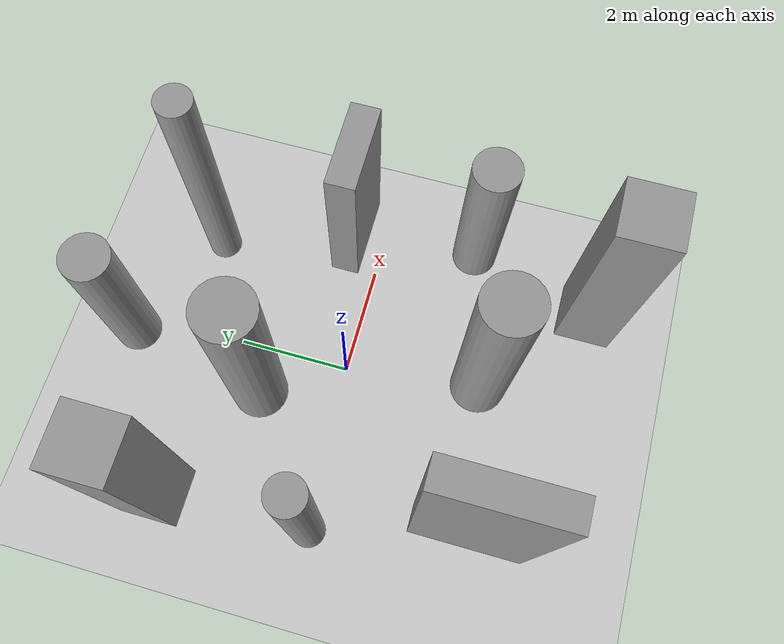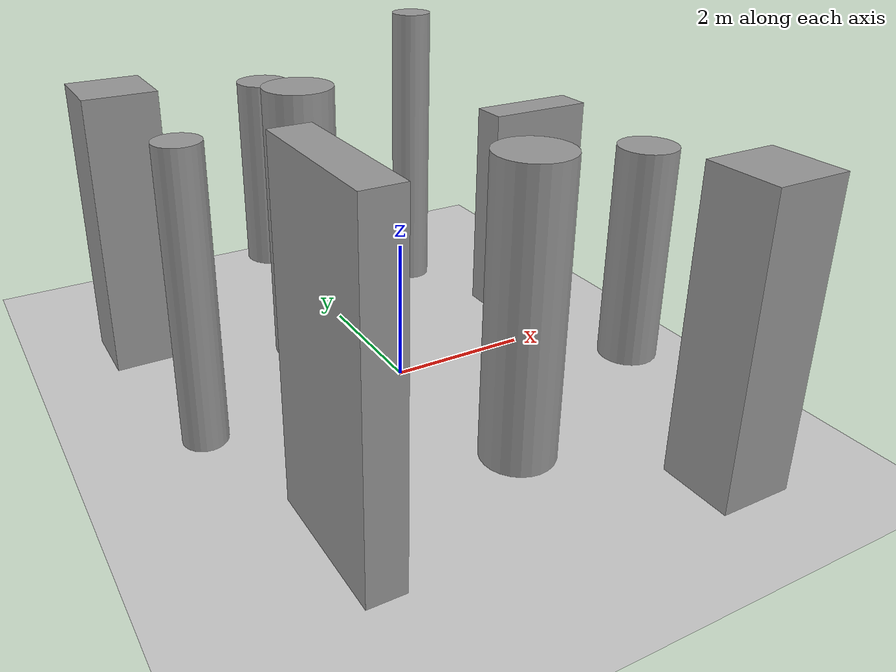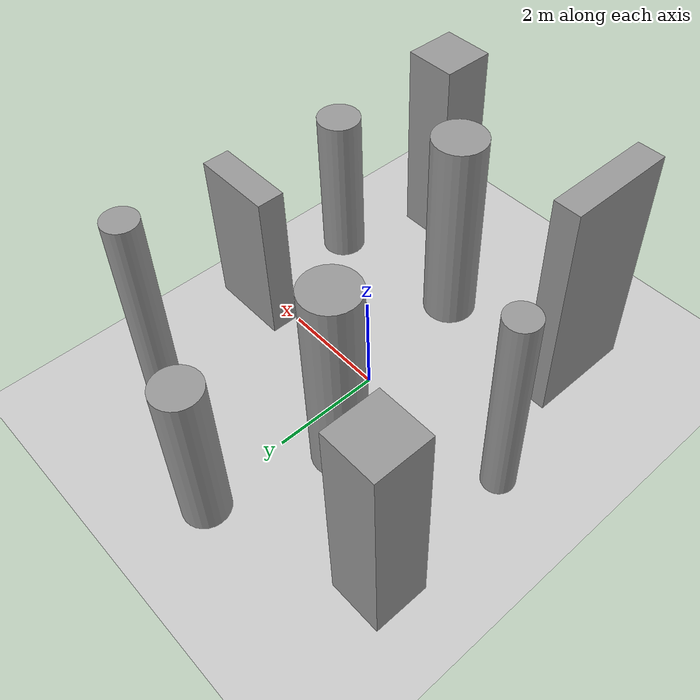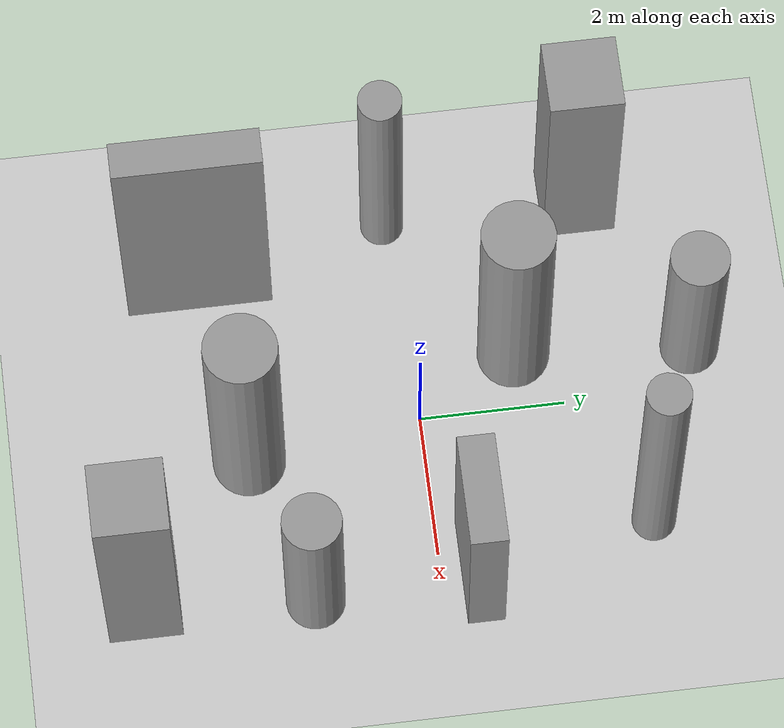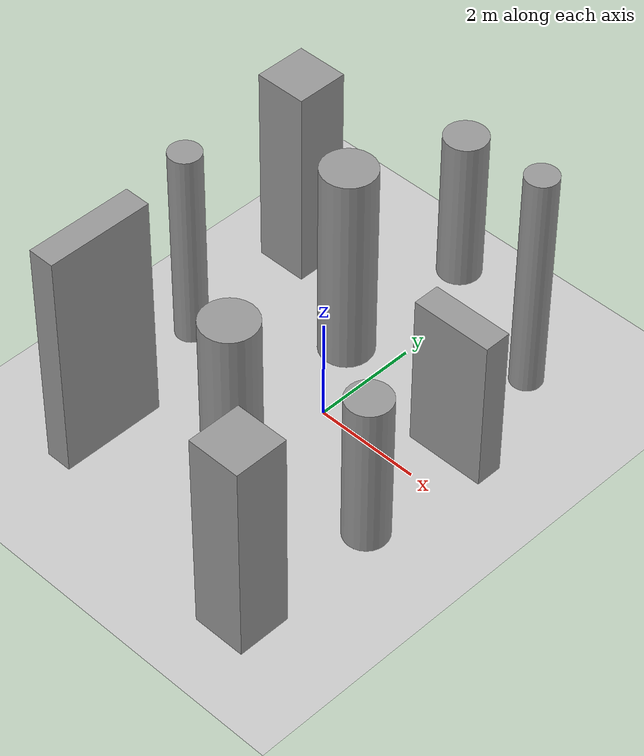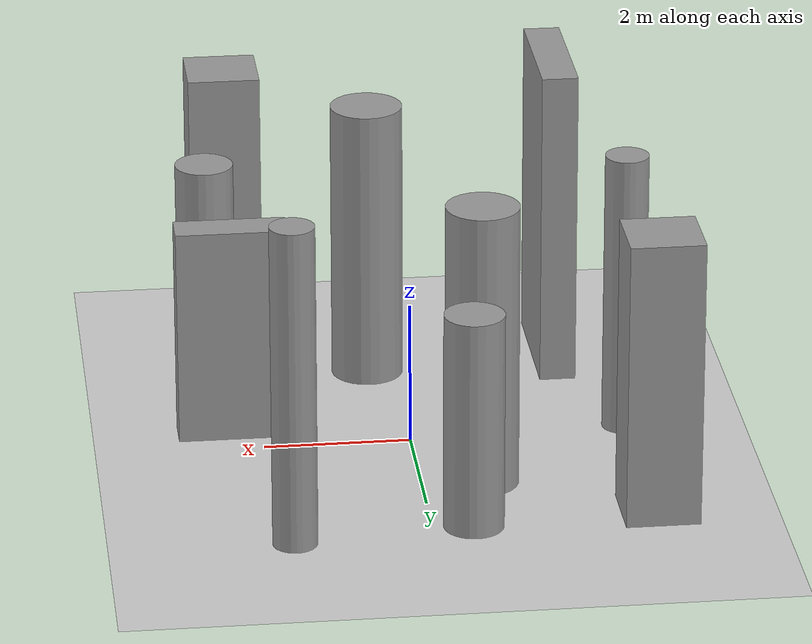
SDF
<sdf version="1.7">
 <world name="default">
  <light name="sun" type="directional">
   <pose>0 0 10 0 -0 0</pose>
   <diffuse>0.8 0.8 0.8 1</diffuse>
   <specular>0.2 0.2 0.2 1</specular>
   <attenuation>
    <range>1000</range>
    <constant>0.9</constant>
    <linear>0.01</linear>
    <quadratic>0.001</quadratic>
   </attenuation>
   <direction>-0.5 0.1 -0.9</direction>
   <spot><inner_angle>0</inner_angle><outer_angle>0</outer_angle><falloff>0</falloff></spot>
  </light>
  <model name="ground_plane">
   <static>1</static>
   <link name="link">
    <collision name="collision">
     <geometry><plane><normal>0 0 1</normal><size>100 100</size></plane></geometry>
     <surface><friction><ode><mu>100</mu><mu2>50</mu2></ode></friction></surface>
    </collision>
    <visual name="visual">
     <cast_shadows>0</cast_shadows>
     <geometry><plane><normal>0 0 1</normal><size>100 100</size></plane></geometry>
     <material>
      <script><uri>file://media/materials/scripts/gazebo.material</uri><name>Gazebo/Grey</name></script>
     </material>
    </visual>
   </link>
  </model>
  <gravity>0 0 -9.8</gravity>
  <magnetic_field>6e-06 2.3e-05 -4.2e-05</magnetic_field>
  <atmosphere type="adiabatic"/>
  <physics type="ode">
   <max_step_size>0.001</max_step_size>
   <real_time_factor>1</real_time_factor>
   <real_time_update_rate>1000</real_time_update_rate>
  </physics>
  <scene><ambient>0.4 0.4 0.4 1</ambient><background>0.7 0.7 0.7 1</background><shadows>1</shadows></scene>
  <audio><device>default</device></audio>
  <spherical_coordinates>
   <surface_model>EARTH_WGS84</surface_model>
   <latitude_deg>0</latitude_deg>
   <longitude_deg>0</longitude_deg>
   <elevation>0</elevation>
   <heading_deg>0</heading_deg>
  </spherical_coordinates>
  <model name="obstalces2">
   <link name="link_11">
    <inertial>
     <mass>1</mass>
     <inertia><ixx>166667</ixx><ixy>0</ixy><ixz>0</ixz><iyy>166667</iyy><iyz>0</iyz><izz>166667</izz></inertia>
    </inertial>
    <pose>-3.03778 2.53975 0 0 -0 0</pose>
    <visual name="visual">
     <geometry><box><size>1 1 4</size></box></geometry>
     <material>
      <lighting>1</lighting>
      <script><uri>file://media/materials/scripts/gazebo.material</uri><name>Gazebo/Grey</name></script>
      <shader type="pixel"><normal_map>__default__</normal_map></shader>
      <ambient>0.3 0.3 0.3 1</ambient>
      <diffuse>0.7 0.7 0.7 1</diffuse>
      <specular>0.01 0.01 0.01 1</specular>
      <emissive>0 0 0 1</emissive>
     </material>
    </visual>
    <collision name="collision">
     <geometry><box><size>1 1 4</size></box></geometry>
     <surface>
      <friction>
       <ode><mu>1</mu><mu2>1</mu2><fdir1>0 0 0</fdir1><slip1>0</slip1><slip2>0</slip2></ode>
       <torsional>
        <coefficient>1</coefficient>
        <patch_radius>0</patch_radius>
        <surface_radius>0</surface_radius>
        <use_patch_radius>1</use_patch_radius>
        <ode><slip>0</slip></ode>
       </torsional>
      </friction>
      <bounce><restitution_coefficient>0</restitution_coefficient><threshold>1e+06</threshold></bounce>
      <contact>
       <collide_without_contact>0</collide_without_contact>
       <collide_without_contact_bitmask>1</collide_without_contact_bitmask>
       <collide_bitmask>1</collide_bitmask>
       <ode>
        <soft_cfm>0</soft_cfm>
        <soft_erp>0.2</soft_erp>
        <kp>1e+13</kp>
        <kd>1</kd>
        <max_vel>0.01</max_vel>
        <min_depth>0</min_depth>
       </ode>
       <bullet>
        <split_impulse>1</split_impulse>
        <split_impulse_penetration_threshold>-0.01</split_impulse_penetration_threshold>
        <soft_cfm>0</soft_cfm>
        <soft_erp>0.2</soft_erp>
        <kp>1e+13</kp>
        <kd>1</kd>
       </bullet>
      </contact>
     </surface>
    </collision>
   </link>
   <link name="link_12">
    <inertial>
     <mass>1</mass>
     <inertia><ixx>145833</ixx><ixy>0</ixy><ixz>0</ixz><iyy>145833</iyy><iyz>0</iyz><izz>125</izz></inertia>
    </inertial>
    <pose>2.64639 -1.73365 0 0 -0 0</pose>
    <visual name="visual">
     <geometry><cylinder><radius>0.4</radius><length>3</length></cylinder></geometry>
     <material>
      <lighting>1</lighting>
      <script><uri>file://media/materials/scripts/gazebo.material</uri><name>Gazebo/Grey</name></script>
      <shader type="pixel"><normal_map>__default__</normal_map></shader>
      <ambient>0.3 0.3 0.3 1</ambient>
      <diffuse>0.7 0.7 0.7 1</diffuse>
      <specular>0.01 0.01 0.01 1</specular>
      <emissive>0 0 0 1</emissive>
     </material>
    </visual>
    <collision name="collision">
     <geometry><cylinder><radius>0.4</radius><length>3</length></cylinder></geometry>
     <surface>
      <friction>
       <ode><mu>1</mu><mu2>1</mu2><fdir1>0 0 0</fdir1><slip1>0</slip1><slip2>0</slip2></ode>
       <torsional>
        <coefficient>1</coefficient>
        <patch_radius>0</patch_radius>
        <surface_radius>0</surface_radius>
        <use_patch_radius>1</use_patch_radius>
        <ode><slip>0</slip></ode>
       </torsional>
      </friction>
      <bounce><restitution_coefficient>0</restitution_coefficient><threshold>1e+06</threshold></bounce>
      <contact>
       <collide_without_contact>0</collide_without_contact>
       <collide_without_contact_bitmask>1</collide_without_contact_bitmask>
       <collide_bitmask>1</collide_bitmask>
       <ode>
        <soft_cfm>0</soft_cfm>
        <soft_erp>0.2</soft_erp>
        <kp>1e+13</kp>
        <kd>1</kd>
        <max_vel>0.01</max_vel>
        <min_depth>0</min_depth>
       </ode>
       <bullet>
        <split_impulse>1</split_impulse>
        <split_impulse_penetration_threshold>-0.01</split_impulse_penetration_threshold>
        <soft_cfm>0</soft_cfm>
        <soft_erp>0.2</soft_erp>
        <kp>1e+13</kp>
        <kd>1</kd>
       </bullet>
      </contact>
     </surface>
    </collision>
   </link>
   <link name="link_14">
    <inertial>
     <mass>1</mass>
     <inertia><ixx>145833</ixx><ixy>0</ixy><ixz>0</ixz><iyy>145833</iyy><iyz>0</iyz><izz>125</izz></inertia>
    </inertial>
    <pose>0.344724 -2.40039 0 0 -0 0</pose>
    <visual name="visual">
     <geometry><cylinder><radius>0.5</radius><length>4</length></cylinder></geometry>
     <material>
      <lighting>1</lighting>
      <script><uri>file://media/materials/scripts/gazebo.material</uri><name>Gazebo/Grey</name></script>
      <shader type="pixel"><normal_map>__default__</normal_map></shader>
      <ambient>0.3 0.3 0.3 1</ambient>
      <diffuse>0.7 0.7 0.7 1</diffuse>
      <specular>0.01 0.01 0.01 1</specular>
      <emissive>0 0 0 1</emissive>
     </material>
    </visual>
    <collision name="collision">
     <geometry><cylinder><radius>0.5</radius><length>4</length></cylinder></geometry>
     <surface>
      <friction>
       <ode><mu>1</mu><mu2>1</mu2><fdir1>0 0 0</fdir1><slip1>0</slip1><slip2>0</slip2></ode>
       <torsional>
        <coefficient>1</coefficient>
        <patch_radius>0</patch_radius>
        <surface_radius>0</surface_radius>
        <use_patch_radius>1</use_patch_radius>
        <ode><slip>0</slip></ode>
       </torsional>
      </friction>
      <bounce><restitution_coefficient>0</restitution_coefficient><threshold>1e+06</threshold></bounce>
      <contact>
       <collide_without_contact>0</collide_without_contact>
       <collide_without_contact_bitmask>1</collide_without_contact_bitmask>
       <collide_bitmask>1</collide_bitmask>
       <ode>
        <soft_cfm>0</soft_cfm>
        <soft_erp>0.2</soft_erp>
        <kp>1e+13</kp>
        <kd>1</kd>
        <max_vel>0.01</max_vel>
        <min_depth>0</min_depth>
       </ode>
       <bullet>
        <split_impulse>1</split_impulse>
        <split_impulse_penetration_threshold>-0.01</split_impulse_penetration_threshold>
        <soft_cfm>0</soft_cfm>
        <soft_erp>0.2</soft_erp>
        <kp>1e+13</kp>
        <kd>1</kd>
       </bullet>
      </contact>
     </surface>
    </collision>
   </link>
   <link name="link_16">
    <inertial>
     <mass>1</mass>
     <inertia><ixx>145833</ixx><ixy>0</ixy><ixz>0</ixz><iyy>145833</iyy><iyz>0</iyz><izz>125</izz></inertia>
    </inertial>
    <pose>-0.815528 1.39211 0 0 -0 0</pose>
    <visual name="visual">
     <geometry><cylinder><radius>0.5</radius><length>4</length></cylinder></geometry>
     <material>
      <lighting>1</lighting>
      <script><uri>file://media/materials/scripts/gazebo.material</uri><name>Gazebo/Grey</name></script>
      <shader type="pixel"><normal_map>__default__</normal_map></shader>
      <ambient>0.3 0.3 0.3 1</ambient>
      <diffuse>0.7 0.7 0.7 1</diffuse>
      <specular>0.01 0.01 0.01 1</specular>
      <emissive>0 0 0 1</emissive>
     </material>
    </visual>
    <collision name="collision">
     <geometry><cylinder><radius>0.5</radius><length>4</length></cylinder></geometry>
     <surface>
      <friction>
       <ode><mu>1</mu><mu2>1</mu2><fdir1>0 0 0</fdir1><slip1>0</slip1><slip2>0</slip2></ode>
       <torsional>
        <coefficient>1</coefficient>
        <patch_radius>0</patch_radius>
        <surface_radius>0</surface_radius>
        <use_patch_radius>1</use_patch_radius>
        <ode><slip>0</slip></ode>
       </torsional>
      </friction>
      <bounce><restitution_coefficient>0</restitution_coefficient><threshold>1e+06</threshold></bounce>
      <contact>
       <collide_without_contact>0</collide_without_contact>
       <collide_without_contact_bitmask>1</collide_without_contact_bitmask>
       <collide_bitmask>1</collide_bitmask>
       <ode>
        <soft_cfm>0</soft_cfm>
        <soft_erp>0.2</soft_erp>
        <kp>1e+13</kp>
        <kd>1</kd>
        <max_vel>0.01</max_vel>
        <min_depth>0</min_depth>
       </ode>
       <bullet>
        <split_impulse>1</split_impulse>
        <split_impulse_penetration_threshold>-0.01</split_impulse_penetration_threshold>
        <soft_cfm>0</soft_cfm>
        <soft_erp>0.2</soft_erp>
        <kp>1e+13</kp>
        <kd>1</kd>
       </bullet>
      </contact>
     </surface>
    </collision>
   </link>
   <link name="link_17">
    <inertial>
     <mass>1</mass>
     <inertia><ixx>145833</ixx><ixy>0</ixy><ixz>0</ixz><iyy>145833</iyy><iyz>0</iyz><izz>125</izz></inertia>
    </inertial>
    <pose>-0.417772 3.76581 0 0 -0 0</pose>
    <visual name="visual">
     <geometry><cylinder><radius>0.4</radius><length>3</length></cylinder></geometry>
     <material>
      <lighting>1</lighting>
      <script><uri>file://media/materials/scripts/gazebo.material</uri><name>Gazebo/Grey</name></script>
      <shader type="pixel"><normal_map>__default__</normal_map></shader>
      <ambient>0.3 0.3 0.3 1</ambient>
      <diffuse>0.7 0.7 0.7 1</diffuse>
      <specular>0.01 0.01 0.01 1</specular>
      <emissive>0 0 0 1</emissive>
     </material>
    </visual>
    <collision name="collision">
     <geometry><cylinder><radius>0.4</radius><length>3</length></cylinder></geometry>
     <surface>
      <friction>
       <ode><mu>1</mu><mu2>1</mu2><fdir1>0 0 0</fdir1><slip1>0</slip1><slip2>0</slip2></ode>
       <torsional>
        <coefficient>1</coefficient>
        <patch_radius>0</patch_radius>
        <surface_radius>0</surface_radius>
        <use_patch_radius>1</use_patch_radius>
        <ode><slip>0</slip></ode>
       </torsional>
      </friction>
      <bounce><restitution_coefficient>0</restitution_coefficient><threshold>1e+06</threshold></bounce>
      <contact>
       <collide_without_contact>0</collide_without_contact>
       <collide_without_contact_bitmask>1</collide_without_contact_bitmask>
       <collide_bitmask>1</collide_bitmask>
       <ode>
        <soft_cfm>0</soft_cfm>
        <soft_erp>0.2</soft_erp>
        <kp>1e+13</kp>
        <kd>1</kd>
        <max_vel>0.01</max_vel>
        <min_depth>0</min_depth>
       </ode>
       <bullet>
        <split_impulse>1</split_impulse>
        <split_impulse_penetration_threshold>-0.01</split_impulse_penetration_threshold>
        <soft_cfm>0</soft_cfm>
        <soft_erp>0.2</soft_erp>
        <kp>1e+13</kp>
        <kd>1</kd>
       </bullet>
      </contact>
     </surface>
    </collision>
   </link>
   <link name="link_18">
    <inertial>
     <mass>1</mass>
     <inertia><ixx>166667</ixx><ixy>0</ixy><ixz>0</ixz><iyy>166667</iyy><iyz>0</iyz><izz>166667</izz></inertia>
    </inertial>
    <pose>2.22537 -4.04815 0 0 -0 0</pose>
    <visual name="visual">
     <geometry><box><size>1 1 4</size></box></geometry>
     <material>
      <lighting>1</lighting>
      <script><uri>file://media/materials/scripts/gazebo.material</uri><name>Gazebo/Grey</name></script>
      <shader type="pixel"><normal_map>__default__</normal_map></shader>
      <ambient>0.3 0.3 0.3 1</ambient>
      <diffuse>0.7 0.7 0.7 1</diffuse>
      <specular>0.01 0.01 0.01 1</specular>
      <emissive>0 0 0 1</emissive>
     </material>
    </visual>
    <collision name="collision">
     <geometry><box><size>1 1 4</size></box></geometry>
     <surface>
      <friction>
       <ode><mu>1</mu><mu2>1</mu2><fdir1>0 0 0</fdir1><slip1>0</slip1><slip2>0</slip2></ode>
       <torsional>
        <coefficient>1</coefficient>
        <patch_radius>0</patch_radius>
        <surface_radius>0</surface_radius>
        <use_patch_radius>1</use_patch_radius>
        <ode><slip>0</slip></ode>
       </torsional>
      </friction>
      <bounce><restitution_coefficient>0</restitution_coefficient><threshold>1e+06</threshold></bounce>
      <contact>
       <collide_without_contact>0</collide_without_contact>
       <collide_without_contact_bitmask>1</collide_without_contact_bitmask>
       <collide_bitmask>1</collide_bitmask>
       <ode>
        <soft_cfm>0</soft_cfm>
        <soft_erp>0.2</soft_erp>
        <kp>1e+13</kp>
        <kd>1</kd>
        <max_vel>0.01</max_vel>
        <min_depth>0</min_depth>
       </ode>
       <bullet>
        <split_impulse>1</split_impulse>
        <split_impulse_penetration_threshold>-0.01</split_impulse_penetration_threshold>
        <soft_cfm>0</soft_cfm>
        <soft_erp>0.2</soft_erp>
        <kp>1e+13</kp>
        <kd>1</kd>
       </bullet>
      </contact>
     </surface>
    </collision>
   </link>
   <link name="link_3">
    <inertial>
     <mass>1</mass>
     <inertia><ixx>145833</ixx><ixy>0</ixy><ixz>0</ixz><iyy>145833</iyy><iyz>0</iyz><izz>125</izz></inertia>
    </inertial>
    <pose>-2.97254 -0.183383 0 0 -0 0</pose>
    <visual name="visual">
     <geometry><cylinder><radius>0.3</radius><length>4</length></cylinder></geometry>
     <material>
      <lighting>1</lighting>
      <script><uri>file://media/materials/scripts/gazebo.material</uri><name>Gazebo/Grey</name></script>
      <shader type="pixel"><normal_map>__default__</normal_map></shader>
      <ambient>0.3 0.3 0.3 1</ambient>
      <diffuse>0.7 0.7 0.7 1</diffuse>
      <specular>0.01 0.01 0.01 1</specular>
      <emissive>0 0 0 1</emissive>
     </material>
    </visual>
    <collision name="collision">
     <geometry><cylinder><radius>0.3</radius><length>4</length></cylinder></geometry>
     <surface>
      <friction>
       <ode><mu>1</mu><mu2>1</mu2><fdir1>0 0 0</fdir1><slip1>0</slip1><slip2>0</slip2></ode>
       <torsional>
        <coefficient>1</coefficient>
        <patch_radius>0</patch_radius>
        <surface_radius>0</surface_radius>
        <use_patch_radius>1</use_patch_radius>
        <ode><slip>0</slip></ode>
       </torsional>
      </friction>
      <bounce><restitution_coefficient>0</restitution_coefficient><threshold>1e+06</threshold></bounce>
      <contact>
       <collide_without_contact>0</collide_without_contact>
       <collide_without_contact_bitmask>1</collide_without_contact_bitmask>
       <collide_bitmask>1</collide_bitmask>
       <ode>
        <soft_cfm>0</soft_cfm>
        <soft_erp>0.2</soft_erp>
        <kp>1e+13</kp>
        <kd>1</kd>
        <max_vel>0.01</max_vel>
        <min_depth>0</min_depth>
       </ode>
       <bullet>
        <split_impulse>1</split_impulse>
        <split_impulse_penetration_threshold>-0.01</split_impulse_penetration_threshold>
        <soft_cfm>0</soft_cfm>
        <soft_erp>0.2</soft_erp>
        <kp>1e+13</kp>
        <kd>1</kd>
       </bullet>
      </contact>
     </surface>
    </collision>
   </link>
   <link name="link_4">
    <inertial>
     <mass>1</mass>
     <inertia><ixx>166667</ixx><ixy>0</ixy><ixz>0</ixz><iyy>166667</iyy><iyz>0</iyz><izz>166667</izz></inertia>
    </inertial>
    <pose>2.46004 0.510193 0 0 -0 0</pose>
    <visual name="visual">
     <geometry><box><size>1.5 0.5 3</size></box></geometry>
     <material>
      <lighting>1</lighting>
      <script><uri>file://media/materials/scripts/gazebo.material</uri><name>Gazebo/Grey</name></script>
      <shader type="pixel"><normal_map>__default__</normal_map></shader>
      <ambient>0.3 0.3 0.3 1</ambient>
      <diffuse>0.7 0.7 0.7 1</diffuse>
      <specular>0.01 0.01 0.01 1</specular>
      <emissive>0 0 0 1</emissive>
     </material>
    </visual>
    <collision name="collision">
     <geometry><box><size>1.5 0.5 3</size></box></geometry>
     <surface>
      <friction>
       <ode><mu>1</mu><mu2>1</mu2><fdir1>0 0 0</fdir1><slip1>0</slip1><slip2>0</slip2></ode>
       <torsional>
        <coefficient>1</coefficient>
        <patch_radius>0</patch_radius>
        <surface_radius>0</surface_radius>
        <use_patch_radius>1</use_patch_radius>
        <ode><slip>0</slip></ode>
       </torsional>
      </friction>
      <bounce><restitution_coefficient>0</restitution_coefficient><threshold>1e+06</threshold></bounce>
      <contact>
       <collide_without_contact>0</collide_without_contact>
       <collide_without_contact_bitmask>1</collide_without_contact_bitmask>
       <collide_bitmask>1</collide_bitmask>
       <ode>
        <soft_cfm>0</soft_cfm>
        <soft_erp>0.2</soft_erp>
        <kp>1e+13</kp>
        <kd>1</kd>
        <max_vel>0.01</max_vel>
        <min_depth>0</min_depth>
       </ode>
       <bullet>
        <split_impulse>1</split_impulse>
        <split_impulse_penetration_threshold>-0.01</split_impulse_penetration_threshold>
        <soft_cfm>0</soft_cfm>
        <soft_erp>0.2</soft_erp>
        <kp>1e+13</kp>
        <kd>1</kd>
       </bullet>
      </contact>
     </surface>
    </collision>
   </link>
   <link name="link_5">
    <inertial>
     <mass>1</mass>
     <inertia><ixx>166667</ixx><ixy>0</ixy><ixz>0</ixz><iyy>166667</iyy><iyz>0</iyz><izz>166667</izz></inertia>
    </inertial>
    <pose>-2.2822 -2.82561 0 0 -0 0</pose>
    <visual name="visual">
     <geometry><box><size>0.5 2 5</size></box></geometry>
     <material>
      <lighting>1</lighting>
      <script><uri>file://media/materials/scripts/gazebo.material</uri><name>Gazebo/Grey</name></script>
      <shader type="pixel"><normal_map>__default__</normal_map></shader>
      <ambient>0.3 0.3 0.3 1</ambient>
      <diffuse>0.7 0.7 0.7 1</diffuse>
      <specular>0.01 0.01 0.01 1</specular>
      <emissive>0 0 0 1</emissive>
     </material>
    </visual>
    <collision name="collision">
     <geometry><box><size>0.5 2 5</size></box></geometry>
     <surface>
      <friction>
       <ode><mu>1</mu><mu2>1</mu2><fdir1>0 0 0</fdir1><slip1>0</slip1><slip2>0</slip2></ode>
       <torsional>
        <coefficient>1</coefficient>
        <patch_radius>0</patch_radius>
        <surface_radius>0</surface_radius>
        <use_patch_radius>1</use_patch_radius>
        <ode><slip>0</slip></ode>
       </torsional>
      </friction>
      <bounce><restitution_coefficient>0</restitution_coefficient><threshold>1e+06</threshold></bounce>
      <contact>
       <collide_without_contact>0</collide_without_contact>
       <collide_without_contact_bitmask>1</collide_without_contact_bitmask>
       <collide_bitmask>1</collide_bitmask>
       <ode>
        <soft_cfm>0</soft_cfm>
        <soft_erp>0.2</soft_erp>
        <kp>1e+13</kp>
        <kd>1</kd>
        <max_vel>0.01</max_vel>
        <min_depth>0</min_depth>
       </ode>
       <bullet>
        <split_impulse>1</split_impulse>
        <split_impulse_penetration_threshold>-0.01</split_impulse_penetration_threshold>
        <soft_cfm>0</soft_cfm>
        <soft_erp>0.2</soft_erp>
        <kp>1e+13</kp>
        <kd>1</kd>
       </bullet>
      </contact>
     </surface>
    </collision>
   </link>
   <link name="link_6">
    <inertial>
     <mass>1</mass>
     <inertia><ixx>145833</ixx><ixy>0</ixy><ixz>0</ixz><iyy>145833</iyy><iyz>0</iyz><izz>125</izz></inertia>
    </inertial>
    <pose>1.8493 2.9833 0 0 -0 0</pose>
    <visual name="visual">
     <geometry><cylinder><radius>0.3</radius><length>5</length></cylinder></geometry>
     <material>
      <lighting>1</lighting>
      <script><uri>file://media/materials/scripts/gazebo.material</uri><name>Gazebo/Grey</name></script>
      <shader type="pixel"><normal_map>__default__</normal_map></shader>
      <ambient>0.3 0.3 0.3 1</ambient>
      <diffuse>0.7 0.7 0.7 1</diffuse>
      <specular>0.01 0.01 0.01 1</specular>
      <emissive>0 0 0 1</emissive>
     </material>
    </visual>
    <collision name="collision">
     <geometry><cylinder><radius>0.3</radius><length>5</length></cylinder></geometry>
     <surface>
      <friction>
       <ode><mu>1</mu><mu2>1</mu2><fdir1>0 0 0</fdir1><slip1>0</slip1><slip2>0</slip2></ode>
       <torsional>
        <coefficient>1</coefficient>
        <patch_radius>0</patch_radius>
        <surface_radius>0</surface_radius>
        <use_patch_radius>1</use_patch_radius>
        <ode><slip>0</slip></ode>
       </torsional>
      </friction>
      <bounce><restitution_coefficient>0</restitution_coefficient><threshold>1e+06</threshold></bounce>
      <contact>
       <collide_without_contact>0</collide_without_contact>
       <collide_without_contact_bitmask>1</collide_without_contact_bitmask>
       <collide_bitmask>1</collide_bitmask>
       <ode>
        <soft_cfm>0</soft_cfm>
        <soft_erp>0.2</soft_erp>
        <kp>1e+13</kp>
        <kd>1</kd>
        <max_vel>0.01</max_vel>
        <min_depth>0</min_depth>
       </ode>
       <bullet>
        <split_impulse>1</split_impulse>
        <split_impulse_penetration_threshold>-0.01</split_impulse_penetration_threshold>
        <soft_cfm>0</soft_cfm>
        <soft_erp>0.2</soft_erp>
        <kp>1e+13</kp>
        <kd>1</kd>
       </bullet>
      </contact>
     </surface>
    </collision>
   </link>
   <static>0</static>
   <pose>1e-05 9e-06 2 -4e-06 5e-06 0</pose>
  </model>
 </world>
</sdf>
